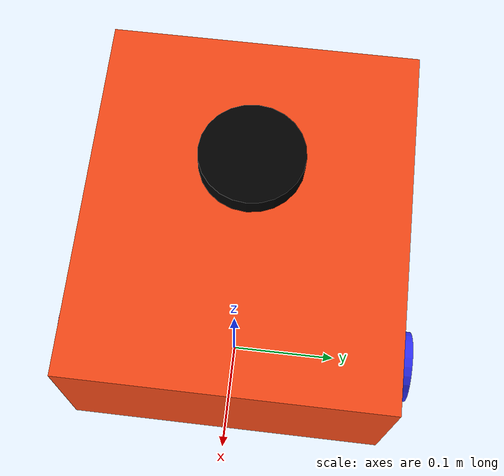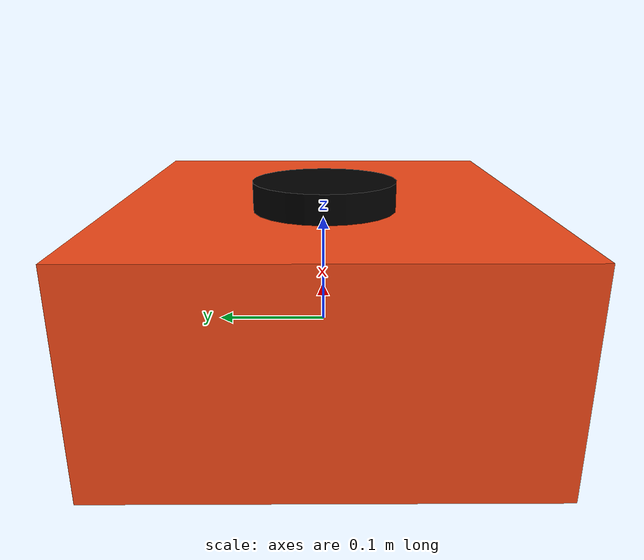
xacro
<?xml version="1.0"?>
<robot xmlns:xacro="http://www.ros.org/wiki/xacro"  name="my_robot">
        <xacro:include filename="robot_core.xacro"/>
        <xacro:include filename="ros2_control.xacro" />
        <xacro:include filename="lidar.xacro" />
</robot>

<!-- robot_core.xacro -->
<robot xmlns:xacro="http://www.ros.org/wiki/xacro">

	<xacro:include filename="inertial_macros.xacro" />

	<xacro:property name="chassis_length" value="0.35" />
	<xacro:property name="chassis_width" value="0.3" />
	<xacro:property name="chassis_height" value="0.15" />
	<xacro:property name="chassis_mass" value="0.5" />
	<xacro:property name="wheel_radius" value="0.035" />
	<xacro:property name="wheel_thickness" value="0.025" />
	<xacro:property name="wheel_mass" value="0.05" />
	<xacro:property name="wheel_offset_x" value="0.27" />
	<xacro:property name="wheel_offset_y" value="${chassis_width / 2 + wheel_thickness / 2}" />
	<xacro:property name="wheel_offset_z" value="0.01" />
	<xacro:property name="caster_wheel_radius" value="0.03" />
	<xacro:property name="caster_wheel_mass" value="0.03" />
	<xacro:property name="caster_wheel_offset_x" value="0.075" />
	<xacro:property name="caster_wheel_offset_z"
		value="${wheel_offset_z - wheel_radius + caster_wheel_radius}" />

	<material name="white">
		<color rgba="1 1 1 1" />
	</material>

	<material name="orange">
		<color rgba="1 0.3 0.1 1" />
	</material>

	<material name="blue">
		<color rgba="0.2 0.2 1 1" />
	</material>

	<material name="black">
		<color rgba="0 0 0 1" />
	</material>

	<material name="red">
		<color rgba="1 0 0 1" />
	</material>

	<!-- BASE LINK -->

	<link name="base_link">

	</link>

	<!-- BASE_FOOTPRINT LINK -->

	<joint name="base_footprint_joint" type="fixed">
		<parent link="base_link" />
		<child link="base_footprint" />
		<origin xyz="0 0 0" rpy="0 0 0" />
	</joint>

	<link name="base_footprint">
	</link>

	<!-- CHASSIS LINK -->

	<joint name="chassis_joint" type="fixed">
		<parent link="base_link" />
		<child link="chassis" />
		<origin xyz="${-wheel_offset_x} 0 ${-wheel_offset_z}" />
	</joint>

	<link name="chassis">
		<visual>
			<origin xyz="${chassis_length/2} 0 ${chassis_height/2}" />
			<geometry>
				<box size="${chassis_length} ${chassis_width} ${chassis_height}" />
			</geometry>
			<material name="orange" />
		</visual>
		<collision>
			<origin xyz="${chassis_length/2} 0 ${chassis_height/2}" />
			<geometry>
				<box size="${chassis_length} ${chassis_width} ${chassis_height}" />
			</geometry>
		</collision>
		<xacro:inertial_box mass="${chassis_mass}" x="${chassis_length}" y="${chassis_width}"
			z="${chassis_height}">
			<origin xyz="${chassis_length/2} 0 ${chassis_height/2}" rpy="0 0 0" />
		</xacro:inertial_box>
	</link>

	<gazebo reference="chassis">
		<material>Gazebo/Orange</material>
	</gazebo>

	<!-- LEFT WHEEL LINK -->

	<joint name="left_wheel_joint" type="continuous">
		<parent link="base_link" />
		<child link="left_wheel" />
		<origin xyz="0 ${wheel_offset_y} 0" rpy="-${pi/2} 0 0" />
		<axis xyz="0 0 1" />
	</joint>

	<link name="left_wheel">
		<visual>
			<geometry>
				<cylinder radius="${wheel_radius}" length="${wheel_thickness}" />
			</geometry>
			<material name="blue" />
		</visual>
		<collision>
			<geometry>
				<sphere radius="${wheel_radius}" />
			</geometry>
		</collision>
		<xacro:inertial_cylinder mass="${wheel_mass}" length="${wheel_thickness}"
			radius="${wheel_radius}">
			<origin xyz="0 0 0" rpy="0 0 0" />
		</xacro:inertial_cylinder>
	</link>

	<gazebo reference="left_wheel">
		<material>Gazebo/Blue</material>
	</gazebo>

	<!-- RIGHT WHEEL LINK -->

	<joint name="right_wheel_joint" type="continuous">
		<parent link="base_link" />
		<child link="right_wheel" />
		<origin xyz="0 ${-wheel_offset_y} 0" rpy="${pi/2} 0 0" />
		<axis xyz="0 0 -1" />
	</joint>

	<link name="right_wheel">
		<visual>
			<geometry>
				<cylinder radius="${wheel_radius}" length="${wheel_thickness}" />
			</geometry>
			<material name="blue" />
		</visual>
		<collision>
			<geometry>
				<sphere radius="${wheel_radius}" />
			</geometry>
		</collision>
		<xacro:inertial_cylinder mass="${wheel_mass}" length="${wheel_thickness}"
			radius="${wheel_radius}">
			<origin xyz="0 0 0" rpy="0 0 0" />
		</xacro:inertial_cylinder>
	</link>

	<gazebo reference="right_wheel">
		<material>Gazebo/Blue</material>
	</gazebo>

	<!-- CASTER WHEEL LINK -->

	<joint name="caster_wheel_joint" type="fixed">
		<parent link="chassis" />
		<child link="caster_wheel" />
		<origin xyz="${caster_wheel_offset_x} 0 ${caster_wheel_offset_z}" />
	</joint>

	<link name="caster_wheel">
		<visual>
			<geometry>
				<sphere radius="${caster_wheel_radius}" />
			</geometry>
			<material name="white" />
		</visual>
		<collision>
			<geometry>
				<sphere radius="${caster_wheel_radius}" />
			</geometry>
		</collision>
		<xacro:inertial_sphere mass="${caster_wheel_mass}" radius="${caster_wheel_radius}">
			<origin xyz="0 0 0" rpy="0 0 0" />
		</xacro:inertial_sphere>
	</link>

	<gazebo reference="caster_wheel">
		<material>Gazebo/White</material>
		<mu1 value="0.001" />
		<mu2 value="0.001" />
	</gazebo>
</robot>

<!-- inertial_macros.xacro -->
<robot xmlns:xacro="http://www.ros.org/wiki/xacro" >

    <!-- Specify some standard inertial calculations https://en.wikipedia.org/wiki/List_of_moments_of_inertia -->
    <!-- These make use of xacro's mathematical functionality -->

    <xacro:macro name="inertial_sphere" params="mass radius *origin">
	<inertial>
	    <xacro:insert_block name="origin"/>
	    <mass value="${mass}" />
	    <inertia ixx="${(2/5) * mass * (radius*radius)}" ixy="0.0" ixz="0.0"
		    iyy="${(2/5) * mass * (radius*radius)}" iyz="0.0"
		    izz="${(2/5) * mass * (radius*radius)}" />
	</inertial>
    </xacro:macro>

    <xacro:macro name="inertial_box" params="mass x y z *origin">
	<inertial>
	    <xacro:insert_block name="origin"/>
	    <mass value="${mass}" />
	    <inertia ixx="${(1/12) * mass * (y*y+z*z)}" ixy="0.0" ixz="0.0"
		    iyy="${(1/12) * mass * (x*x+z*z)}" iyz="0.0"
		    izz="${(1/12) * mass * (x*x+y*y)}" />
	</inertial>
    </xacro:macro>

    <xacro:macro name="inertial_cylinder" params="mass length radius *origin">
	<inertial>
	    <xacro:insert_block name="origin"/>
	    <mass value="${mass}" />
	    <inertia ixx="${(1/12) * mass * (3*radius*radius + length*length)}" ixy="0.0" ixz="0.0"
		    iyy="${(1/12) * mass * (3*radius*radius + length*length)}" iyz="0.0"
		    izz="${(1/2) * mass * (radius*radius)}" />
	</inertial>
    </xacro:macro>

</robot>

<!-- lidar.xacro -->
<robot xmlns:xacro="http://www.ros.org/wiki/xacro">

        <joint name="lidar_joint" type="fixed">
                <parent link="chassis" />
                <child link="lidar_frame" />
                <origin xyz="0.13 0 0.15" rpy="0 0 0" />
        </joint>

        <link name="lidar_frame">
                <visual>
                        <geometry>
                                <cylinder radius="0.05" length="0.04" />
                        </geometry>
                        <material name="black" />
                </visual>
                <collision>
                        <geometry>
                                <cylinder radius="0.05" length="0.04" />
                        </geometry>
                </collision>
                <xacro:inertial_cylinder mass="0.1" length="0.04" radius="0.05">
                        <origin xyz="0 0 0" rpy="0 0 0" />
                </xacro:inertial_cylinder>
        </link>

        <gazebo reference="lidar_frame">
                <material>Gazebo/Black</material>

                <sensor name="gpu_lidar" type="gpu_lidar">
                        <topic>lidar</topic>
                        <update_rate>10</update_rate>
                        <lidar>
                                <scan>
                                        <horizontal>
                                                <samples>360</samples>
                                                <resolution>1</resolution>
                                                <min_angle>-3.14</min_angle>
                                                <max_angle>3.14</max_angle>
                                        </horizontal>
                                </scan>
                                <range>
                                        <min>0.08</min>
                                        <max>10.0</max>
                                        <resolution>0.01</resolution>
                                </range>
                        </lidar>
                        <visualize>true</visualize>
                        <gz_frame_id>lidar_frame</gz_frame_id>
                </sensor>
        </gazebo>

</robot>
